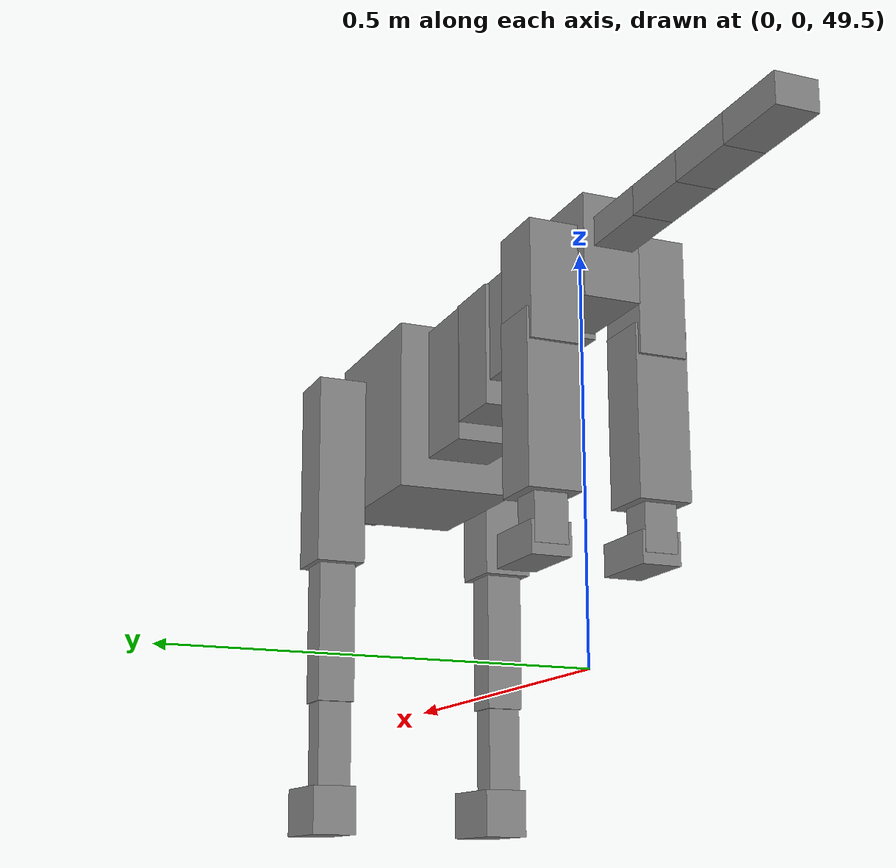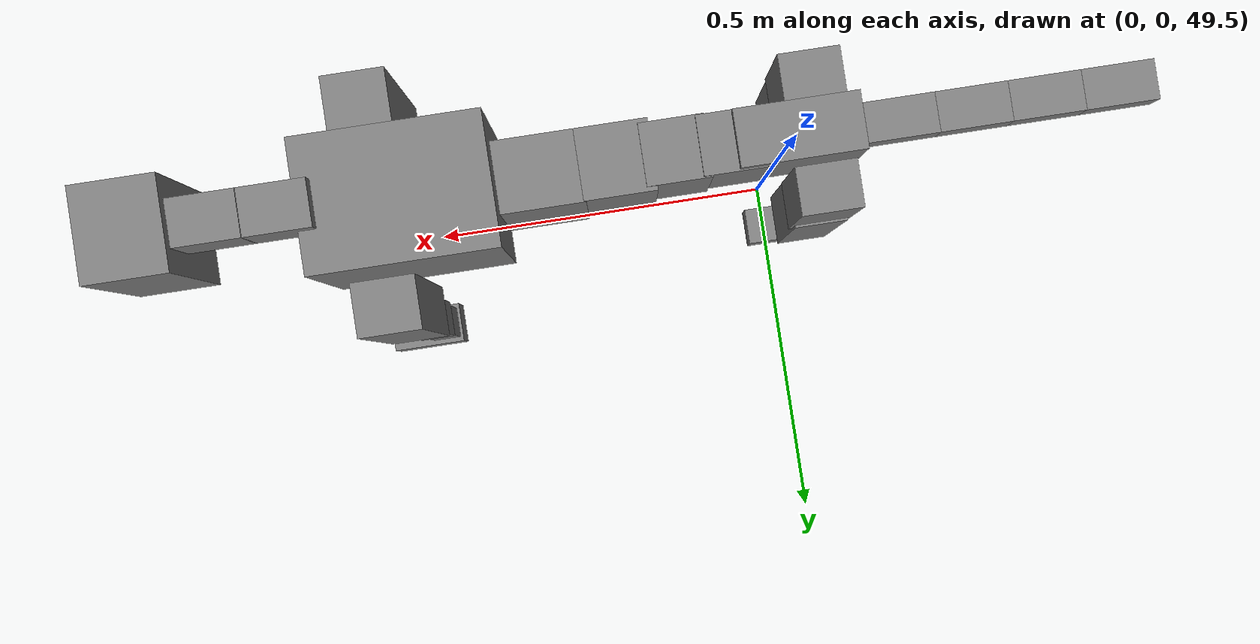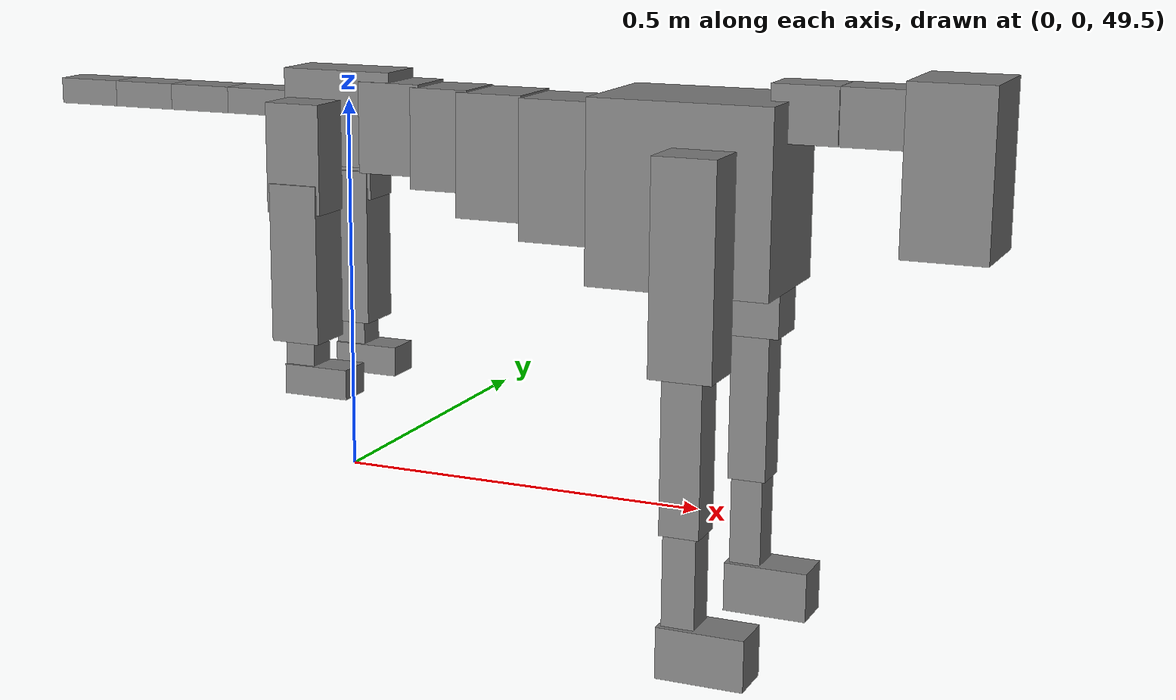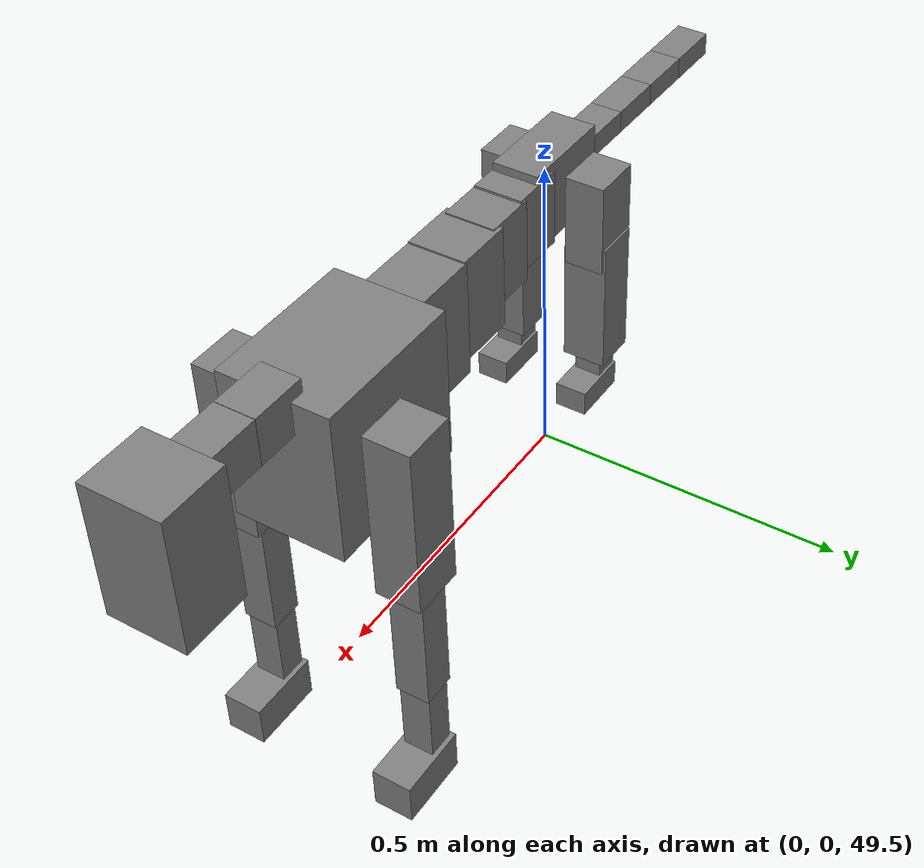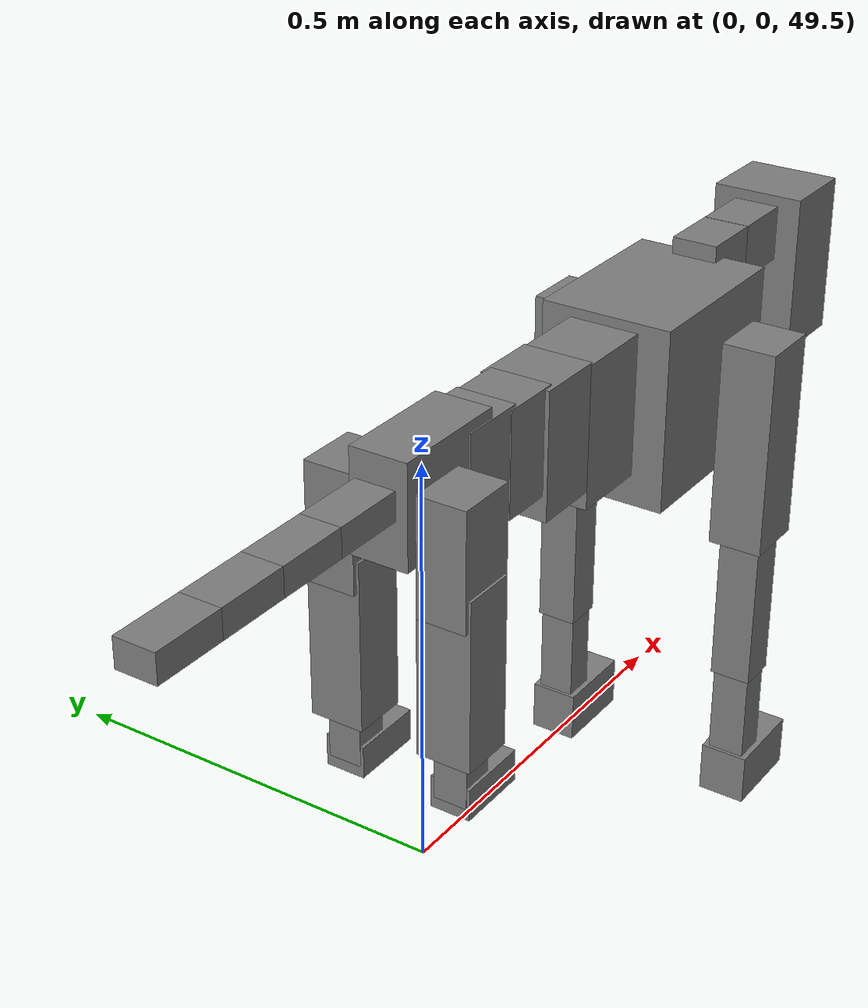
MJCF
<mujoco model="dog">

    <default>
        <joint armature="0.02" stiffness="1" damping="0.2" limited="true"/>
        <geom condim="3" friction="1 0.05 0.05" margin="0.01"/>
        <motor ctrllimited="true" ctrlrange="-1.0 1.0" forcelimited="true" gear="50"/>
    </default>

    <compiler inertiafromgeom="true" angle="radian"/>

    <option timestep="0.016" iterations="50" tolerance="1e-10" solver="Newton" jacobian="dense" cone="pyramidal"/>

    <size nconmax="20000" njmax="60000" nstack="5000000"/>
    <visual>
        <map force="0.1" zfar="30"/>
        <rgba haze="0.15 0.25 0.35 1"/>
        <quality shadowsize="2048"/>
        <global offwidth="800" offheight="800"/>
    </visual>

    <asset>
        <texture type="skybox" builtin="gradient" rgb1="0.3 0.5 0.7" rgb2="0 0 0" width="512" height="512"/>
        <texture name="texplane" type="2d" builtin="checker" rgb1=".2 .3 .4" rgb2=".1 0.15 0.2" width="512" height="512"
                 mark="cross" markrgb=".8 .8 .8"/>
        <texture name="texgeom" type="cube" builtin="flat" mark="cross" width="127" height="1278" rgb1="0.8 0.6 0.4"
                 rgb2="0.8 0.6 0.4" markrgb="1 1 1" random="0.01"/>

        <material name="matplane" reflectance="0.3" texture="texplane" texrepeat="1 1" texuniform="true"/>
        <material name="matgeom" texture="texgeom" texuniform="true" rgba="0.8 0.6 .4 1"/>
    </asset>

    <worldbody>
        <geom name="floor" pos="0 0 0" size="0 0 .25" type="plane" material="matplane" condim="3"/>

        <light directional="false" diffuse=".2 .2 .2" specular="0 0 0" pos="0 0 5" dir="0 0 -1" castshadow="false"/>
        <light mode="targetbodycom" target="torso" directional="false" diffuse=".8 .8 .8" specular="0.3 0.3 0.3"
               pos="0 0 4.0" dir="0 0 -1"/>

        <body name="root" pos="0 0 50">
            <freejoint name="root_1"/>
            <geom type="box" pos="0 0 -0.02" size="0.0774  0.0358  0.063" density="2030"/>

            <body name="spine1" pos="0.054 0 0">
                <joint name="spine1_y" axis="0 1 0" range="0 0.7" limited="true"/>
                <geom type="box" pos="0.02375 0 -0.03" size="0.04375  0.0375  0.05985" density="2030"/>

                <body name="spine2" pos="0.0612 0 0">
                    <joint name="spine2_y" axis="0 1 0" range="-0.15 0.15" limited="true"/>
                    <geom type="box" pos="0.03555  0  -0.04" size="0.04055  0.039  0.06615" density="2030"/>

                    <body name="spine3" pos="0.0730 0 0">
                        <joint name="spine3_y" axis="0 1 0" range="-0.15 0.15" limited="true"/>
                        <geom type="box" pos="0.03555  0  -0.057" size="0.04555  0.0445  0.081" density="2030"/>

                        <body name="spine4" pos="0.0780 0 0">
                            <joint name="spine4_y" axis="0 1 0" range="-0.15 0.15" limited="true"/>
                            <geom type="box" pos="0.05265  0  -0.07" size="0.05265  0.045  0.09135" density="2030"/>

                            <body name="torso" pos="0.1082 0 0">
                                <joint name="torso_y" axis="0 1 0" range="-0.15 0.15" limited="true"/>
                                <geom type="box" pos="0.11925  0  -0.085" size="0.11925  0.085  0.11745"
                                      density="2030"/>

                                <body name="neck1" pos="0.2160  0   0.0180">
                                    <joint name="neck1_y" axis="0 1 0" range="-1.2  -1" limited="true"/>
                                    <geom type="box" pos="0.0423  0  0" size="0.0423  0.03  0.036" density="2325"/>

                                    <body name="neck2" pos="0.0853  0  0">
                                        <joint name="neck2_y" axis="0 1 0" range="0.1  0" limited="true"/>
                                        <geom type="box" pos="0.0423  0  0" size="0.0423  0.03  0.036" density="2325"/>

                                        <body name="head" pos="0.0853  0  0">
                                            <joint name="head_y" axis="0 1 0" range="-0.3  -0.2" limited="true"/>
                                            <geom type="box" pos="0.0531  0  -0.055" size="0.0531  0.06  0.1044"
                                                  density="4030"/>

                                        </body>
                                    </body>
                                </body>

                                <body name="front_shoulder" pos="0.156  0   -0.0480">
                                    <joint name="front_shoulder_y" axis="0 1 0" range="-1 1.5" limited="true"/>
                                    <geom type="box" pos="0 0.13 -0.1079" size="0.0407  0.0348  0.1345" density="1158"/>
                                    <geom type="box" pos="0 -0.13 -0.1079" size="0.0407  0.0348  0.1345"
                                          density="1158"/>

                                    <body name="front_elbow" pos="0  0  -0.2158">
                                        <joint name="front_elbow_y" axis="0 1 0" range="-2 0" limited="true"/>
                                        <geom type="box" pos="0 0.13 -0.1116" size="0.0258  0.0264  0.1116"
                                              density="1081"/>
                                        <geom type="box" pos="0 -0.13 -0.1116" size="0.0258  0.0264  0.1116"
                                              density="1081"/>

                                        <body name="front_wrist" pos="0  0  -0.2232">
                                            <joint name="front_wrist_y" axis="0 1 0" range="-0.2 0" limited="true"/>
                                            <geom type="box" pos="0 0.13 -0.0658" size="0.0214  0.0238  0.0790"
                                                  density="1664"/>
                                            <geom type="box" pos="0 -0.13 -0.0658" size="0.0214  0.0238  0.0790"
                                                  density="1664"/>

                                            <body name="front_finger_end" pos="0  0  -0.1317">
                                                <joint name="front_finger_y" axis="0 1 0" range="-0.4 1"
                                                       limited="true"/>
                                                <geom type="box" pos="0.0311  0.13  -0.0185"
                                                      size="0.0570  0.0311  0.0335" density="1515"/>
                                                <geom type="box" pos="0.0311  -0.13  -0.0185"
                                                      size="0.0570  0.0311  0.0335" density="1515"/>

                                            </body>

                                        </body>
                                    </body>
                                </body>

                            </body>
                        </body>
                    </body>
                </body>
            </body>

            <body name="back_hip" pos="-0.03 0 -0.018">
                <joint name="back_hip_y" axis="0 1 0" range="-1.5 0.3" limited="true"/>
                <geom type="box" pos="0 0.07 -0.0492" size="0.0388  0.0305  0.0720" density="1154"/>
                <geom type="box" pos="0 -0.07 -0.0492" size="0.0388  0.0305  0.0720" density="1154"/>

                <body name="back_knee" pos="0  0  -0.0984">
                    <joint name="back_knee_y" axis="0 1 0" range="0 2.8" limited="true"/>
                    <geom type="box" pos="0 0.07 -0.0896" size="0.0342  0.0337  0.1051" density="1227"/>
                    <geom type="box" pos="0 -0.07 -0.0896" size="0.0342  0.0337  0.1051" density="1227"/>

                    <body name="back_ankle" pos="0  0  -0.1791">
                        <joint name="back_ankle_y" axis="0 1 0" range="-2.2 0" limited="true"/>
                        <geom type="box" pos="0 0.07 -0.0316" size="0.0210  0.0210  0.0429" density="1284"/>
                        <geom type="box" pos="0 -0.07 -0.0316" size="0.0210  0.0210  0.0429" density="1284"/>

                        <body name="back_toe_end" pos="0  0  -0.0633">
                            <joint name="back_toe_y" axis="0 1 0" range="-0.4 1" limited="true"/>
                            <geom type="box" pos="0.0249  0.07  -0.0050" size="0.0456  0.0249  0.0200" density="1515"/>
                            <geom type="box" pos="0.0249  -0.07  -0.0050" size="0.0456  0.0249  0.0200" density="1515"/>

                        </body>
                    </body>
                </body>
            </body>

            <body name="tail1" pos="-0.074 0 -0.006">
                <joint name="tail1_y" axis="0 1 0" range="-0.2 0.2" limited="true"/>
                <geom type="box" pos="-0.0536  0  0" size="0.045  0.025  0.0175" density="1587"/>

                <body name="tail2" pos="-0.09 0 0">
                    <joint name="tail2_y" axis="0 1 0" range="-0.2 0.2" limited="true"/>
                    <geom type="box" pos="-0.0536  0  0" size="0.045  0.025  0.0175" density="1587"/>

                    <body name="tail3" pos="-0.09 0 0">
                        <joint name="tail3_y" axis="0 1 0" range="-0.2 0.2" limited="true"/>
                        <geom type="box" pos="-0.0536  0  0" size="0.045  0.025  0.0175" density="1587"/>

                        <body name="tail4" pos="-0.09 0 0">
                            <joint name="tail4_y" axis="0 1 0" range="-0.2 0.2" limited="true"/>
                            <geom type="box" pos="-0.0536  0  0" size="0.045  0.025  0.0175" density="1587"/>

                        </body>
                    </body>
                </body>
            </body>
        </body>
    </worldbody>

    <actuator>
        <motor joint="spine1_y" forcerange="-150 150     "/>
        <motor joint="spine2_y" forcerange="-150 150     "/>
        <motor joint="spine3_y" forcerange="-150 150     "/>
        <motor joint="spine4_y" forcerange="-150 150     "/>
        <motor joint="torso_y" forcerange="-150 150     "/>
        <motor joint="neck1_y" forcerange="-100 100       "/>
        <motor joint="neck2_y" forcerange="-100 100       "/>
        <motor joint="head_y" forcerange="-150 150       "/>
        <motor joint="front_shoulder_y" forcerange="-163.34 168.71"/>
        <motor joint="front_elbow_y" forcerange="-169.04 122.62"/>
        <motor joint="front_wrist_y" forcerange="-94.45 95.79"/>
        <motor joint="front_finger_y" forcerange="-54.69 71.09"/>
        <motor joint="back_hip_y" forcerange="-292.05 314.03"/>
        <motor joint="back_knee_y" forcerange="-326.37 364.47"/>
        <motor joint="back_angle_y" forcerange="-73.26 163.11"/>
        <motor joint="back_toe_y" forcerange="-24.08 94.85"/>
        <motor joint="tail1_y" forcerange="-50 50     "/>
        <motor joint="tail2_y" forcerange="-50 50     "/>
        <motor joint="tail3_y" forcerange="-50 50     "/>
        <motor joint="tail4_y" forcerange="-50 50     "/>
    </actuator>
</mujoco>
